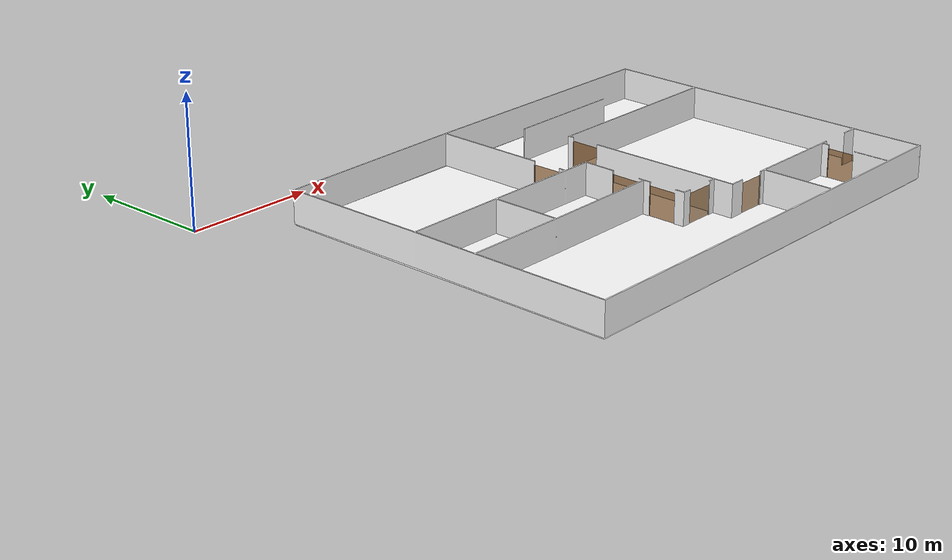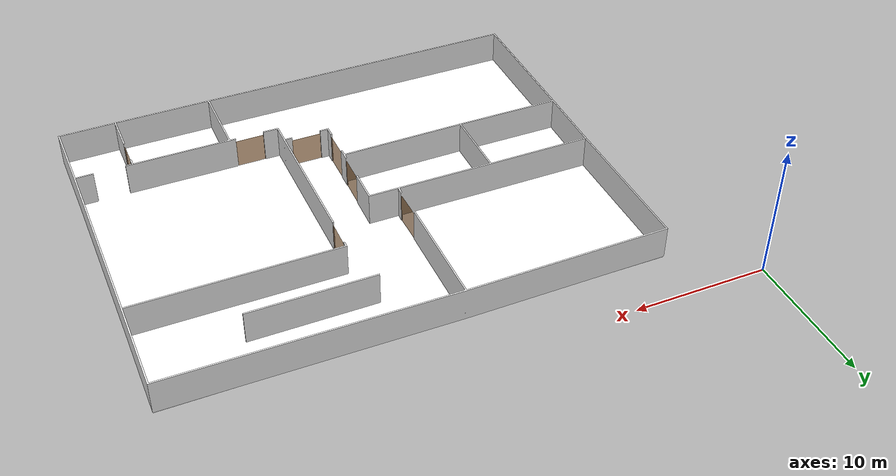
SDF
<sdf version="1.7">
 <world name="world">
  <scene><ambient>0.8 0.8 0.8 1.0</ambient><background>0 0 0</background><grid>false</grid></scene>
  <include><uri>model://sun</uri></include>
  <model name="Door1">
   <pose>20.652707647131933 -13.676180590081412 0.0 0 0 -1.5549236233531445</pose>
   <link name="right">
    <pose>0 0 1.11 0 0 0</pose>
    <visual name="right_visual">
     <geometry><box><size>2.315791314517449 0.03 2.2</size></box></geometry>
     <material><ambient>0.5 0.25 0 0.6</ambient><diffuse>0.5 0.25 0 0.6</diffuse></material>
    </visual>
    <collision name="right_collision">
     <geometry><box><size>2.315791314517449 0.03 2.2</size></box></geometry>
     <surface><contact><collide_bitmask>0x02</collide_bitmask></contact></surface>
    </collision>
    <inertial>
     <mass>50.0</mass>
     <inertia><ixx>20.17041666666667</ixx><iyy>42.512039218310235</iyy><izz>22.349122551643557</izz></inertia>
    </inertial>
   </link>
   <joint name="right_joint" type="revolute">
    <parent>world</parent>
    <child>right</child>
    <axis><xyz>0 0 1</xyz><limit><lower>0</lower><upper>1.57</upper></limit></axis>
    <pose>1.1628956572587243 0 0 0 0 0</pose>
   </joint>
   <plugin name="door" filename="libdoor.so">
    <v_max_door>0.5</v_max_door>
    <a_max_door>0.3</a_max_door>
    <a_nom_door>0.15</a_nom_door>
    <dx_min_door>0.01</dx_min_door>
    <f_max_door>500.0</f_max_door>
    <door name="Door1" type="SwingDoor" left_joint_name="empty_joint" right_joint_name="right_joint"/>
   </plugin>
  </model>
  <model name="Door2">
   <pose>26.22653773848735 -12.568803989807968 0.0 0 0 -1.5866688844500496</pose>
   <link name="right">
    <pose>0 0 1.11 0 0 0</pose>
    <visual name="right_visual">
     <geometry><box><size>2.3158126747000747 0.03 2.2</size></box></geometry>
     <material><ambient>0.5 0.25 0 0.6</ambient><diffuse>0.5 0.25 0 0.6</diffuse></material>
    </visual>
    <collision name="right_collision">
     <geometry><box><size>2.3158126747000747 0.03 2.2</size></box></geometry>
     <surface><contact><collide_bitmask>0x02</collide_bitmask></contact></surface>
    </collision>
    <inertial>
     <mass>50.0</mass>
     <inertia><ixx>20.17041666666667</ixx><iyy>42.51245143458965</iyy><izz>22.349534767922975</izz></inertia>
    </inertial>
   </link>
   <joint name="right_joint" type="revolute">
    <parent>world</parent>
    <child>right</child>
    <axis><xyz>0 0 -1</xyz><limit><lower>0</lower><upper>1.57</upper></limit></axis>
    <pose>1.1629063373500372 0 0 0 0 0</pose>
   </joint>
   <plugin name="door" filename="libdoor.so">
    <v_max_door>0.5</v_max_door>
    <a_max_door>0.3</a_max_door>
    <a_nom_door>0.15</a_nom_door>
    <dx_min_door>0.01</dx_min_door>
    <f_max_door>500.0</f_max_door>
    <door name="Door2" type="SwingDoor" left_joint_name="empty_joint" right_joint_name="right_joint"/>
   </plugin>
  </model>
  <model name="Door3">
   <pose>22.831870300167793 -19.000300051270894 0.0 0 0 -1.5854211126644746</pose>
   <link name="right">
    <pose>0 0 1.11 0 0 0</pose>
    <visual name="right_visual">
     <geometry><box><size>2.3330955622720033 0.03 2.2</size></box></geometry>
     <material><ambient>0.5 0.25 0 0.6</ambient><diffuse>0.5 0.25 0 0.6</diffuse></material>
    </visual>
    <collision name="right_collision">
     <geometry><box><size>2.3330955622720033 0.03 2.2</size></box></geometry>
     <surface><contact><collide_bitmask>0x02</collide_bitmask></contact></surface>
    </collision>
    <inertial>
     <mass>50.0</mass>
     <inertia><ixx>20.17041666666667</ixx><iyy>42.847228761222155</iyy><izz>22.68431209455548</izz></inertia>
    </inertial>
   </link>
   <joint name="right_joint" type="revolute">
    <parent>world</parent>
    <child>right</child>
    <axis><xyz>0 0 1</xyz><limit><lower>0</lower><upper>1.57</upper></limit></axis>
    <pose>1.1715477811360016 0 0 0 0 0</pose>
   </joint>
   <plugin name="door" filename="libdoor.so">
    <v_max_door>0.5</v_max_door>
    <a_max_door>0.3</a_max_door>
    <a_nom_door>0.15</a_nom_door>
    <dx_min_door>0.01</dx_min_door>
    <f_max_door>500.0</f_max_door>
    <door name="Door3" type="SwingDoor" left_joint_name="empty_joint" right_joint_name="right_joint"/>
   </plugin>
  </model>
  <model name="Door4">
   <pose>22.813412777328942 -22.23546159343732 0.0 0 0 -1.5719681052837418</pose>
   <link name="right">
    <pose>0 0 1.11 0 0 0</pose>
    <visual name="right_visual">
     <geometry><box><size>2.250663568052447 0.03 2.2</size></box></geometry>
     <material><ambient>0.5 0.25 0 0.6</ambient><diffuse>0.5 0.25 0 0.6</diffuse></material>
    </visual>
    <collision name="right_collision">
     <geometry><box><size>2.250663568052447 0.03 2.2</size></box></geometry>
     <surface><contact><collide_bitmask>0x02</collide_bitmask></contact></surface>
    </collision>
    <inertial>
     <mass>50.0</mass>
     <inertia><ixx>20.17041666666667</ixx><iyy>41.272860402327396</iyy><izz>21.10994373566072</izz></inertia>
    </inertial>
   </link>
   <joint name="right_joint" type="revolute">
    <parent>world</parent>
    <child>right</child>
    <axis><xyz>0 0 1</xyz><limit><lower>0</lower><upper>1.57</upper></limit></axis>
    <pose>1.1303317840262235 0 0 0 0 0</pose>
   </joint>
   <plugin name="door" filename="libdoor.so">
    <v_max_door>0.5</v_max_door>
    <a_max_door>0.3</a_max_door>
    <a_nom_door>0.15</a_nom_door>
    <dx_min_door>0.01</dx_min_door>
    <f_max_door>500.0</f_max_door>
    <door name="Door4" type="SwingDoor" left_joint_name="empty_joint" right_joint_name="right_joint"/>
   </plugin>
  </model>
  <model name="Door5">
   <pose>24.546465221241686 -24.06875932198123 0.0 0 0 3.141592653589793</pose>
   <link name="right">
    <pose>0 0 1.11 0 0 0</pose>
    <visual name="right_visual">
     <geometry><box><size>2.301826098440122 0.03 2.2</size></box></geometry>
     <material><ambient>0.5 0.25 0 0.6</ambient><diffuse>0.5 0.25 0 0.6</diffuse></material>
    </visual>
    <collision name="right_collision">
     <geometry><box><size>2.301826098440122 0.03 2.2</size></box></geometry>
     <surface><contact><collide_bitmask>0x02</collide_bitmask></contact></surface>
    </collision>
    <inertial>
     <mass>50.0</mass>
     <inertia><ixx>20.17041666666667</ixx><iyy>42.24334744775032</iyy><izz>22.080430781083642</izz></inertia>
    </inertial>
   </link>
   <joint name="right_joint" type="revolute">
    <parent>world</parent>
    <child>right</child>
    <axis><xyz>0 0 -1</xyz><limit><lower>0</lower><upper>1.57</upper></limit></axis>
    <pose>1.1559130492200609 0 0 0 0 0</pose>
   </joint>
   <plugin name="door" filename="libdoor.so">
    <v_max_door>0.5</v_max_door>
    <a_max_door>0.3</a_max_door>
    <a_nom_door>0.15</a_nom_door>
    <dx_min_door>0.01</dx_min_door>
    <f_max_door>500.0</f_max_door>
    <door name="Door5" type="SwingDoor" left_joint_name="empty_joint" right_joint_name="right_joint"/>
   </plugin>
  </model>
  <model name="Door6">
   <pose>28.467481822136598 -25.61780265365732 0.0 0 0 -3.138922789422284</pose>
   <link name="right">
    <pose>0 0 1.11 0 0 0</pose>
    <visual name="right_visual">
     <geometry><box><size>2.230417996848514 0.03 2.2</size></box></geometry>
     <material><ambient>0.5 0.25 0 0.6</ambient><diffuse>0.5 0.25 0 0.6</diffuse></material>
    </visual>
    <collision name="right_collision">
     <geometry><box><size>2.230417996848514 0.03 2.2</size></box></geometry>
     <surface><contact><collide_bitmask>0x02</collide_bitmask></contact></surface>
    </collision>
    <inertial>
     <mass>50.0</mass>
     <inertia><ixx>20.17041666666667</ixx><iyy>40.89485183610725</iyy><izz>20.731935169440575</izz></inertia>
    </inertial>
   </link>
   <joint name="right_joint" type="revolute">
    <parent>world</parent>
    <child>right</child>
    <axis><xyz>0 0 -1</xyz><limit><lower>0</lower><upper>1.57</upper></limit></axis>
    <pose>1.120208998424257 0 0 0 0 0</pose>
   </joint>
   <plugin name="door" filename="libdoor.so">
    <v_max_door>0.5</v_max_door>
    <a_max_door>0.3</a_max_door>
    <a_nom_door>0.15</a_nom_door>
    <dx_min_door>0.01</dx_min_door>
    <f_max_door>500.0</f_max_door>
    <door name="Door6" type="SwingDoor" left_joint_name="empty_joint" right_joint_name="right_joint"/>
   </plugin>
  </model>
  <model name="Door7">
   <pose>37.286140155987816 -27.24816376390529 0.0 0 0 1.566953961097107</pose>
   <link name="right">
    <pose>0 0 1.11 0 0 0</pose>
    <visual name="right_visual">
     <geometry><box><size>2.1916953745160033 0.03 2.2</size></box></geometry>
     <material><ambient>0.5 0.25 0 0.6</ambient><diffuse>0.5 0.25 0 0.6</diffuse></material>
    </visual>
    <collision name="right_collision">
     <geometry><box><size>2.1916953745160033 0.03 2.2</size></box></geometry>
     <surface><contact><collide_bitmask>0x02</collide_bitmask></contact></surface>
    </collision>
    <inertial>
     <mass>50.0</mass>
     <inertia><ixx>20.17041666666667</ixx><iyy>40.18136922781186</iyy><izz>20.018452561145182</izz></inertia>
    </inertial>
   </link>
   <joint name="right_joint" type="revolute">
    <parent>world</parent>
    <child>right</child>
    <axis><xyz>0 0 -1</xyz><limit><lower>0</lower><upper>1.57</upper></limit></axis>
    <pose>1.1008476872580015 0 0 0 0 0</pose>
   </joint>
   <plugin name="door" filename="libdoor.so">
    <v_max_door>0.5</v_max_door>
    <a_max_door>0.3</a_max_door>
    <a_nom_door>0.15</a_nom_door>
    <dx_min_door>0.01</dx_min_door>
    <f_max_door>500.0</f_max_door>
    <door name="Door7" type="SwingDoor" left_joint_name="empty_joint" right_joint_name="right_joint"/>
   </plugin>
  </model>
  <include><name>test_L1</name><uri>model://test_L1</uri></include>
  <rmf_charger_waypoints name="charger_waypoints">
   <rmf_vertex name="tinyRobot1_charger" x="7.0287913274501275" y="-5.327067537754023" level="L1"/>
   <rmf_vertex name="tinyRobot2_charger" x="13.121696522901" y="-5.327900689826611" level="L1"/>
  </rmf_charger_waypoints>
 </world>
</sdf>

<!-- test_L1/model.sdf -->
<sdf version="1.7">
  <model name="test_L1">
    <static>true</static>
    <link name="floor_1">
      <visual name="visual">
        <geometry>
          <mesh>
            <uri>model://test_L1/meshes/floor_1.obj</uri>
          </mesh>
        </geometry>
        <material>
          <diffuse>1.0 1.0 1.0</diffuse>
          <specular>0.1 0.1 0.1</specular>
          <pbr>
            <metal>
              <metalness>0.0</metalness>
              <albedo_map>model://test_L1/meshes/blue_linoleum.png</albedo_map>
            </metal>
          </pbr>
          <script>
            <uri>model://test_L1/meshes/</uri>
            <name>floor_1_Diffuse</name>
          </script>
        </material>
      </visual>
      <collision name="collision">
        <geometry>
          <mesh>
            <uri>model://test_L1/meshes/floor_1.obj</uri>
          </mesh>
        </geometry>
        <surface>
          <contact>
            <collide_bitmask>0x01</collide_bitmask>
          </contact>
        </surface>
      </collision>
    </link>
    <link name="wall_1">
      <visual name="wall_1">
        <geometry>
          <mesh>
            <uri>model://test_L1/meshes/wall_1.obj</uri>
          </mesh>
        </geometry>
        <material>
          <diffuse>1.0 1.0 1.0</diffuse>
          <specular>0.1 0.1 0.1</specular>
          <pbr>
            <metal>
              <metalness>0.0</metalness>
              <albedo_map>model://test_L1/meshes/default.png</albedo_map>
            </metal>
          </pbr>
          <script>
            <uri>model://test_L1/meshes/</uri>
            <name>wall_1_Diffuse</name>
          </script>
        </material>
      </visual>
      <collision name="collision">
        <geometry>
          <mesh>
            <uri>model://test_L1/meshes/wall_1.obj</uri>
          </mesh>
        </geometry>
        <surface>
          <contact>
            <collide_bitmask>0x01</collide_bitmask>
          </contact>
        </surface>
      </collision>
      <pose>5.486429683943262 -31.24136641521828 0 0 0 0</pose>
    </link>
  </model>
</sdf>
